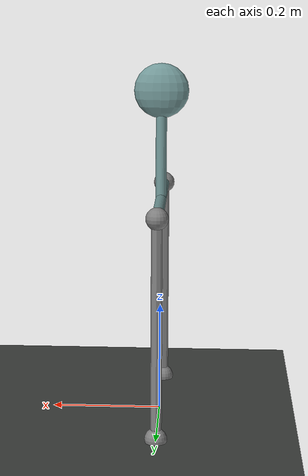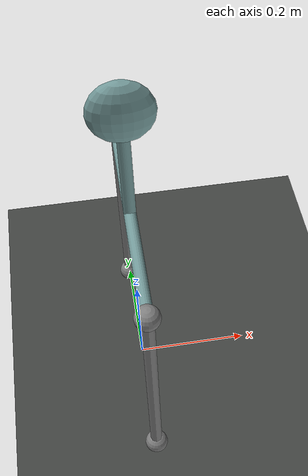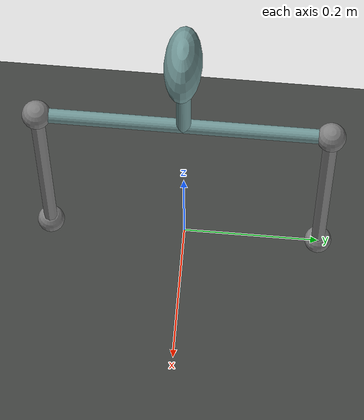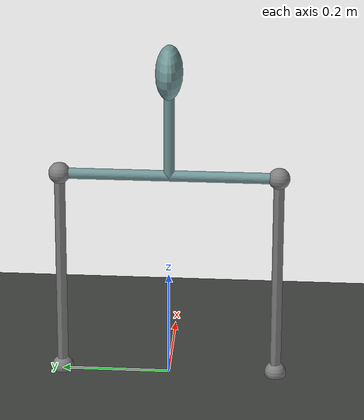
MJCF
<mujoco model="inverted pendulum with flywheel">
	<compiler 	angle="radian"/>

	<option	timestep="0.001"
			iterations="20">
		<flag sensornoise="enable"/>
	</option>

	<default>
	<geom  rgba="0.45 0.6 0.6 1"/>
		<site type="sphere" size="0.02"/>
	</default>
	<worldbody>
	<!-- set up a light pointing down on the robot -->
		<light directional="true" cutoff="4" exponent="20" diffuse="1 1 1" specular="0 0 0" pos=".9 .3 2.5" dir="-.9 -.3 -2.5 "/>

		<!-- ======= Ground ======= -->
		<geom name="ground" type="plane" pos="0 0 0" size="0.5 1 2" rgba=" .25 .26 .25 1"/>
		<site name="rFix" pos="0 -.2 .005"/>
		<site name="lFix" pos="0 .2 .005"/>
		<!--start building model-->

		<!-- ======= Beam ======= -->
		<body name="beam" pos="0 0 0.5">
			 <geom name="rod" type="cylinder" pos="0 0 0.0" size=".01 .1" density="100"/>
			<geom pos="0 0 -.1" type="capsule" size=".01 .2" euler="1.57 0 0"/>
			<joint name="pivot" pos="0 0 -0.1" axis="0 1 0" limited="false" damping=".05"/>
                        <site name="rBeam" pos="0 -.2 -.1"/>
			<site name="lBeam" pos="0 .2 -.1"/>
			<body name="ballbody" pos="0 0 0.1">
				<geom  type="ellipsoid" size=".05 .025 0.05" density="10000" />
				<joint name="flywheel_pivot" axis="0 1 0" limited="false" damping=".05"/>

			</body>

		</body>
	</worldbody>

	<tendon>
		<spatial name="lThread" width="0.01">
			<site site="lBeam"/>
			<site site="lFix"/>
		</spatial>

		<spatial name="rThread"  width="0.01">
			<site site="rBeam"/>
			<site site="rFix"/>
		</spatial>
	</tendon>

	<actuator>
       		 <motor joint='pivot' name='motor' gear="1" forcelimited="true" forcerange="-10 10"/>
		<motor joint='flywheel_pivot' name='flywheel_motor' gear="1" forcelimited="true" forcerange="-10 10"/>
	</actuator>

	<sensor>
		<jointpos name="encoder" joint="pivot" noise="0.001"/>
		<jointpos name="flywheel_encoder" joint="pivot" noise="0.001"/>
	</sensor>

</mujoco>
